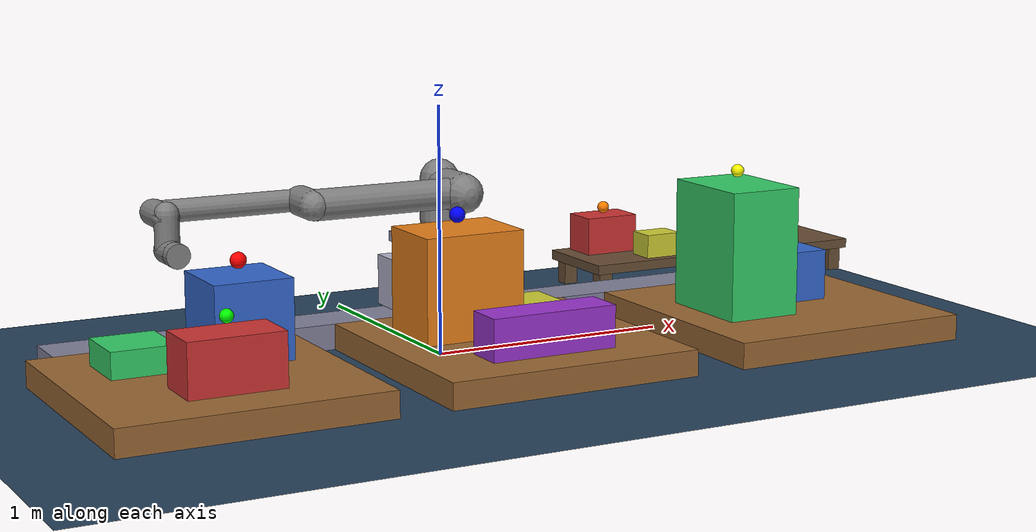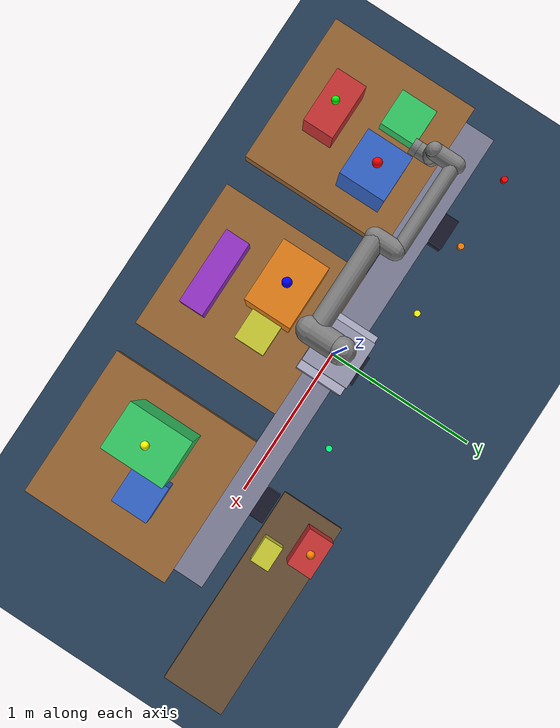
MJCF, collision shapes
<mujoco model="linear_axis_ur10e_warehouse">
    <compiler angle="radian" meshdir="assets" autolimits="true"/>
    <option timestep="0.002" iterations="150" solver="PGS" gravity="0 0 -9.81" integrator="implicitfast"/>
    <statistic center="0 0 0.4" extent="1"/>

    <visual>
        <headlight diffuse="0.6 0.6 0.6" ambient="0.1 0.1 0.1" specular="0 0 0"/>
        <rgba haze="0.15 0.25 0.35 1"/>
        <global azimuth="120" elevation="-20"/>
        <quality shadowsize="2048"/>
        <map stiffness="700" shadowscale="0.5" fogstart="10" fogend="15"/>
    </visual>

    <default>
        <default class="ur10e">
            <material specular="0.5" shininess="0.25"/>
            <joint axis="0 1 0" range="-6.28319 6.28319" armature="0.1"/>
            <position ctrlrange="-6.2831 6.2831"/>
            <general biastype="affine" ctrlrange="-6.2831 6.2831" gainprm="5000" biasprm="0 -5000 -500"/>
            <default class="size4">
                <joint damping="10"/>
                <general forcerange="-330 330"/>
            </default>
            <default class="size3">
                <joint damping="5"/>
                <general forcerange="-150 150"/>
                <default class="size3_limited">
                    <joint range="-3.1415 3.1415"/>
                    <general ctrlrange="-3.1415 3.1415"/>
                </default>
            </default>
            <default class="size2">
                <joint damping="2"/>
                <general forcerange="-56 56"/>
            </default>
            <default class="visual">
                <geom type="mesh" contype="0" conaffinity="0" group="2"/>
            </default>
            <default class="collision">
                <geom type="capsule" group="3"/>
                <default class="eef_collision">
                    <geom type="cylinder"/>
                </default>
            </default>
            <site size="0.001" rgba="0.5 0.5 0.5 0.3" group="4"/>
        </default>

        <!-- Clases para elementos del almacén -->
        <default class="pallet">
            <geom type="box" rgba="0.6 0.4 0.2 1" friction="0.7"/>
        </default>
        <default class="box">
            <geom type="box" friction="0.5"/>
        </default>
        <default class="table">
            <geom type="box" rgba="0.4 0.3 0.2 1" friction="0.8"/>
        </default>
        <default class="marker">
            <geom type="sphere" rgba="1 0 0 1" contype="0" conaffinity="0"/>
        </default>
    </default>

    <asset>
        <!-- Texturas y materiales del entorno -->
        <texture name="grid" type="2d" builtin="checker" width="512" height="512" rgb1="0.1 0.2 0.3" rgb2="0.2 0.3 0.4"/>
        <material name="grid" texture="grid" texrepeat="30 10" texuniform="true" reflectance="0.2"/>

        <texture name="metal" type="2d" builtin="flat" width="32" height="32" rgb1="0.7 0.7 0.8"/>
        <material name="metal" texture="metal" reflectance="0.3" rgba="0.7 0.7 0.8 1"/>

        <texture name="rail" type="2d" builtin="flat" width="32" height="32" rgb1="0.5 0.5 0.6"/>
        <material name="rail" texture="rail" reflectance="0.4" rgba="0.5 0.5 0.6 1"/>

        <texture name="support" type="2d" builtin="flat" width="32" height="32" rgb1="0.3 0.3 0.4"/>
        <material name="support" texture="support" reflectance="0.2" rgba="0.3 0.3 0.4 1"/>

        <!-- Materiales del UR10e -->
        <material class="ur10e" name="black" rgba="0.033 0.033 0.033 1"/>
        <material class="ur10e" name="jointgray" rgba="0.278 0.278 0.278 1"/>
        <material class="ur10e" name="linkgray" rgba="0.82 0.82 0.82 1"/>
        <material class="ur10e" name="urblue" rgba="0.49 0.678 0.8 1"/>

        <!-- Materiales del almacén -->
        <material name="box_blue" rgba="0.2 0.4 0.8 1"/>
        <material name="box_green" rgba="0.2 0.8 0.4 1"/>
        <material name="box_red" rgba="0.8 0.2 0.2 1"/>
        <material name="box_yellow" rgba="0.8 0.8 0.2 1"/>
        <material name="box_orange" rgba="0.9 0.5 0.1 1"/>
        <material name="box_purple" rgba="0.6 0.2 0.8 1"/>

        <!-- Meshes del UR10e -->
        <mesh file="base_0.obj"/>
        <mesh file="base_1.obj"/>
        <mesh file="shoulder_0.obj"/>
        <mesh file="shoulder_1.obj"/>
        <mesh file="shoulder_2.obj"/>
        <mesh file="upperarm_0.obj"/>
        <mesh file="upperarm_1.obj"/>
        <mesh file="upperarm_2.obj"/>
        <mesh file="upperarm_3.obj"/>
        <mesh file="forearm_0.obj"/>
        <mesh file="forearm_1.obj"/>
        <mesh file="forearm_2.obj"/>
        <mesh file="forearm_3.obj"/>
        <mesh file="wrist1_0.obj"/>
        <mesh file="wrist1_1.obj"/>
        <mesh file="wrist1_2.obj"/>
        <mesh file="wrist2_0.obj"/>
        <mesh file="wrist2_1.obj"/>
        <mesh file="wrist2_2.obj"/>
        <mesh file="wrist3.obj"/>
    </asset>

    <worldbody>
        <!-- Iluminación -->
        <light pos="0 0 1.5" dir="0 0 -1" directional="true"/>
        <light name="spotlight" mode="targetbodycom" target="wrist_2_link" pos="0 -1 2"/>

        <!-- Suelo más grande -->
        <geom name="floor" pos="0 0 0" size="15 5 0.1" type="plane" material="grid"/>

        <!-- Carril base fijo - Adaptado a 3 metros -->
        <body name="rail_base" pos="0 0 0.1">
            <geom name="rail_structure" pos="0 0 0.05" size="1.6 0.1 0.05" type="box" material="rail" rgba="0.5 0.5 0.6 1"/>

            <!-- Soportes del carril cada metro (para 3 metros totales) -->
            <geom name="support_1" pos="-1 0 -0.05" size="0.1 0.2 0.05" type="box" material="support"/>
            <geom name="support_2" pos="0 0 -0.05" size="0.1 0.2 0.05" type="box" material="support"/>
            <geom name="support_3" pos="1 0 -0.05" size="0.1 0.2 0.05" type="box" material="support"/>

            <!-- Slider (séptimo eje) - Adaptado a 3 metros -->
            <body name="linear_slider" pos="0 0 0.2">
                <inertial mass="50" pos="0 0 0" diaginertia="1 1 1"/>
                <joint name="linear_joint" type="slide" axis="1 0 0" range="-1.5 1.5" limited="true" damping="50" frictionloss="10"/>

                <!-- Carro del slider -->
                <geom name="slider_cart" pos="0 0 0" size="0.2 0.15 0.1" type="box" material="metal" rgba="0.7 0.7 0.8 1"/>

                <!-- Plataforma de montaje para robots -->
                <body name="mount_platform" pos="0 0 0.15">
                    <geom name="mount_base" pos="0 0 0.02" size="0.15 0.15 0.02" type="box" material="metal" rgba="0.6 0.6 0.7 1"/>

                    <!-- Puntos de montaje (agujeros simulados) -->
                    <geom name="mount_hole_1" pos="0.08 0.08 0.025" size="0.01 0.01 0.025" type="cylinder" rgba="0.2 0.2 0.2 1"/>
                    <geom name="mount_hole_2" pos="-0.08 0.08 0.025" size="0.01 0.01 0.025" type="cylinder" rgba="0.2 0.2 0.2 1"/>
                    <geom name="mount_hole_3" pos="0.08 -0.08 0.025" size="0.01 0.01 0.025" type="cylinder" rgba="0.2 0.2 0.2 1"/>
                    <geom name="mount_hole_4" pos="-0.08 -0.08 0.025" size="0.01 0.01 0.025" type="cylinder" rgba="0.2 0.2 0.2 1"/>

                    <!-- UR10e montado en la plataforma -->
                    <body name="base" pos="0 0 0.05" quat="0 0 0 -1" childclass="ur10e">
                        <inertial mass="4.0" pos="0 0 0" diaginertia="0.0061063308908 0.0061063308908 0.01125"/>
                        <geom mesh="base_0" material="black" class="visual"/>
                        <geom mesh="base_1" material="jointgray" class="visual"/>
                        <body name="shoulder_link" pos="0 0 0.181">
                            <inertial pos="0 0 0" mass="7.778" diaginertia="0.0314743 0.0314743 0.0218756"/>
                            <joint name="shoulder_pan_joint" class="size4" axis="0 0 1"/>
                            <geom mesh="shoulder_0" material="urblue" class="visual"/>
                            <geom mesh="shoulder_1" material="black" class="visual"/>
                            <geom mesh="shoulder_2" material="jointgray" class="visual"/>
                            <geom class="collision" size="0.078 0.08" pos="0 0 -0.05"/>
                            <body name="upper_arm_link" pos="0 0.176 0" quat="1 0 1 0">
                                <inertial pos="0 0 0.3065" mass="12.93" diaginertia="0.423074 0.423074 0.0363656"/>
                                <joint name="shoulder_lift_joint" class="size4"/>
                                <geom mesh="upperarm_0" material="black" class="visual"/>
                                <geom mesh="upperarm_1" material="jointgray" class="visual"/>
                                <geom mesh="upperarm_2" material="urblue" class="visual"/>
                                <geom mesh="upperarm_3" material="linkgray" class="visual"/>
                                <geom class="collision" pos="0 -0.05 0" quat="1 1 0 0" size="0.078 0.08"/>
                                <geom class="collision" size="0.06 0.3" pos="0 0 0.3"/>
                                <body name="forearm_link" pos="0 -0.137 0.613">
                                    <inertial pos="0 0 0.2855" mass="3.87" diaginertia="0.11059 0.11059 0.0108844"/>
                                    <joint name="elbow_joint" class="size3_limited"/>
                                    <geom mesh="forearm_0" material="urblue" class="visual"/>
                                    <geom mesh="forearm_1" material="black" class="visual"/>
                                    <geom mesh="forearm_2" material="jointgray" class="visual"/>
                                    <geom mesh="forearm_3" material="linkgray" class="visual"/>
                                    <geom class="collision" pos="0 0.08 0" quat="1 1 0 0" size="0.058 0.065"/>
                                    <geom class="collision" size="0.043 0.28" pos="0 0 0.29"/>
                                    <body name="wrist_1_link" pos="0 0 0.571" quat="1 0 1 0">
                                        <inertial pos="0 0.135 0" quat="0.5 0.5 -0.5 0.5" mass="1.96" diaginertia="0.0055125 0.00510825 0.00510825"/>
                                        <joint name="wrist_1_joint" class="size2"/>
                                        <geom mesh="wrist1_0" material="black" class="visual"/>
                                        <geom mesh="wrist1_1" material="urblue" class="visual"/>
                                        <geom mesh="wrist1_2" material="jointgray" class="visual"/>
                                        <geom class="collision" pos="0 0.06 0" quat="1 1 0 0" size="0.05 0.07"/>
                                        <body name="wrist_2_link" pos="0 0.135 0">
                                            <inertial pos="0 0 0.12" quat="0.5 0.5 -0.5 0.5" mass="1.96" diaginertia="0.0055125 0.00510825 0.00510825"/>
                                            <joint name="wrist_2_joint" axis="0 0 1" class="size2"/>
                                            <geom mesh="wrist2_0" material="black" class="visual"/>
                                            <geom mesh="wrist2_1" material="urblue" class="visual"/>
                                            <geom mesh="wrist2_2" material="jointgray" class="visual"/>
                                            <geom class="collision" size="0.046 0.065" pos="0 0 0.05"/>
                                            <geom class="collision" pos="0 0.028 0.12" quat="1 1 0 0" size="0.046 0.043"/>
                                            <body name="wrist_3_link" pos="0 0 0.12">
                                                <inertial pos="0 0.092 0" quat="0 1 -1 0" mass="0.202" diaginertia="0.000204525 0.000144346 0.000144346"/>
                                                <joint name="wrist_3_joint" class="size2"/>
                                                <geom material="linkgray" mesh="wrist3" class="visual"/>
                                                <geom class="eef_collision" pos="0 0.097 0" quat="1 1 0 0" size="0.046 0.02"/>
                                                <site name="attachment_site" pos="0 0.1 0" quat="-1 1 0 0"/>
                                            </body>
                                        </body>
                                    </body>
                                </body>
                            </body>
                        </body>
                    </body>
                </body>
            </body>
        </body>

        <!-- ESTIVA 1 - Posición -1.2m en X, separada 10cm del eje -->
        <body name="pallet_1" pos="-1.2 -0.6 0.1">
            <!-- Base de la estiva (1m x 1m x 0.1m) -->
            <geom name="pallet_1_base" pos="0 0 0.05" size="0.5 0.5 0.05" class="pallet"/>

            <!-- Listones de la estiva -->
            <geom name="pallet_1_slat_1" pos="-0.3 0 0.02" size="0.15 0.45 0.02" class="pallet"/>
            <geom name="pallet_1_slat_2" pos="0 0 0.02" size="0.15 0.45 0.02" class="pallet"/>
            <geom name="pallet_1_slat_3" pos="0.3 0 0.02" size="0.15 0.45 0.02" class="pallet"/>

            <!-- Cajas en estiva 1 -->
            <body name="box_1_1" pos="0.2 0.2 0.25">
                <geom name="box_1_1_geom" size="0.15 0.15 0.15" material="box_blue" class="box"/>
                <!-- Marcador en esta caja -->
                <body name="marker_box_1_1" pos="0 0 0.2">
                    <geom name="marker_1_1" size="0.03" class="marker" rgba="1 0 0 1"/>
                </body>
            </body>

            <body name="box_1_2" pos="-0.2 0.2 0.15">
                <geom name="box_1_2_geom" size="0.12 0.12 0.05" material="box_green" class="box"/>
            </body>

            <body name="box_1_3" pos="0 -0.2 0.2">
                <geom name="box_1_3_geom" size="0.18 0.1 0.1" material="box_red" class="box"/>
                <!-- Marcador en esta caja -->
                <body name="marker_box_1_3" pos="0 0 0.15">
                    <geom name="marker_1_3" size="0.025" class="marker" rgba="0 1 0 1"/>
                </body>
            </body>
        </body>

        <!-- ESTIVA 2 - Posición 0.0m en X, separada 10cm del eje -->
        <body name="pallet_2" pos="0.0 -0.6 0.1">
            <!-- Base de la estiva -->
            <geom name="pallet_2_base" pos="0 0 0.05" size="0.5 0.5 0.05" class="pallet"/>

            <!-- Listones de la estiva -->
            <geom name="pallet_2_slat_1" pos="-0.3 0 0.02" size="0.15 0.45 0.02" class="pallet"/>
            <geom name="pallet_2_slat_2" pos="0 0 0.02" size="0.15 0.45 0.02" class="pallet"/>
            <geom name="pallet_2_slat_3" pos="0.3 0 0.02" size="0.15 0.45 0.02" class="pallet"/>

            <!-- Cajas en estiva 2 -->
            <body name="box_2_1" pos="0.15 0.15 0.15">
                <geom name="box_2_1_geom" size="0.1 0.1 0.05" material="box_yellow" class="box"/>
            </body>

            <body name="box_2_2" pos="-0.15 0.15 0.3">
                <geom name="box_2_2_geom" size="0.2 0.15 0.2" material="box_orange" class="box"/>
                <!-- Marcador en esta caja -->
                <body name="marker_box_2_2" pos="0 0 0.25">
                    <geom name="marker_2_2" size="0.03" class="marker" rgba="0 0 1 1"/>
                </body>
            </body>

            <body name="box_2_3" pos="0 -0.25 0.18">
                <geom name="box_2_3_geom" size="0.25 0.08 0.08" material="box_purple" class="box"/>
            </body>
        </body>

        <!-- ESTIVA 3 - Posición 1.2m en X, separada 10cm del eje -->
        <body name="pallet_3" pos="1.2 -0.6 0.1">
            <!-- Base de la estiva -->
            <geom name="pallet_3_base" pos="0 0 0.05" size="0.5 0.5 0.05" class="pallet"/>

            <!-- Listones de la estiva -->
            <geom name="pallet_3_slat_1" pos="-0.3 0 0.02" size="0.15 0.45 0.02" class="pallet"/>
            <geom name="pallet_3_slat_2" pos="0 0 0.02" size="0.15 0.45 0.02" class="pallet"/>
            <geom name="pallet_3_slat_3" pos="0.3 0 0.02" size="0.15 0.45 0.02" class="pallet"/>

            <!-- Cajas en estiva 3 -->
            <body name="box_3_1" pos="0.1 0.1 0.2">
                <geom name="box_3_1_geom" size="0.12 0.12 0.1" material="box_blue" class="box"/>
            </body>

            <body name="box_3_2" pos="-0.2 0 0.35">
                <geom name="box_3_2_geom" size="0.15 0.2 0.25" material="box_green" class="box"/>
                <!-- Marcador en esta caja -->
                <body name="marker_box_3_2" pos="0 0 0.3">
                    <geom name="marker_3_2" size="0.025" class="marker" rgba="1 1 0 1"/>
                </body>
            </body>
        </body>

        <!-- MESA MÁS LARGA, ALEJADA 10CM DEL EJE, PATAS DE 10CM -->
        <body name="work_table" pos="1.5 0.4 0.1">
            <!-- Patas de la mesa (10cm de altura) -->
            <geom name="table_leg_1" pos="0.6 0.15 0.05" size="0.03 0.03 0.05" class="table"/>
            <geom name="table_leg_2" pos="-0.6 0.15 0.05" size="0.03 0.03 0.05" class="table"/>
            <geom name="table_leg_3" pos="0.6 -0.15 0.05" size="0.03 0.03 0.05" class="table"/>
            <geom name="table_leg_4" pos="-0.6 -0.15 0.05" size="0.03 0.03 0.05" class="table"/>

            <!-- Superficie de la mesa (más larga - 130cm x 40cm) -->
            <geom name="table_top" pos="0 0 0.12" size="0.65 0.2 0.02" class="table"/>

            <!-- Múltiples cajas sobre la mesa más larga -->
            <body name="table_box_1" pos="-0.45 0.1 0.22">
                <geom name="table_box_1_geom" size="0.12 0.08 0.08" material="box_red" class="box"/>
                <!-- Marcador sobre esta caja -->
                <body name="marker_table_box_1" pos="0 0 0.11">
                    <geom name="marker_table_1" size="0.025" class="marker" rgba="1 0.5 0 1"/>
                </body>
            </body>

            <body name="table_box_4" pos="-0.3 -0.1 0.19">
                <geom name="table_box_4_geom" size="0.08 0.06 0.05" material="box_yellow" class="box"/>
            </body>

        </body>

        <!-- Marcadores de posición adaptados a 3 metros (cada 0.5m) -->
        <body name="markers">
            <geom name="marker_m1_5" pos="-1.5 0.3 0.01" size="0.02 0.02 0.01" type="cylinder" rgba="1 0 0 1"/>
            <geom name="marker_m1_0" pos="-1.0 0.3 0.01" size="0.02 0.02 0.01" type="cylinder" rgba="1 0.5 0 1"/>
            <geom name="marker_m0_5" pos="-0.5 0.3 0.01" size="0.02 0.02 0.01" type="cylinder" rgba="1 1 0 1"/>
            <geom name="marker_0" pos="0 0.3 0.01" size="0.02 0.02 0.01" type="cylinder" rgba="0 1 0 1"/>
            <geom name="marker_p0_5" pos="0.5 0.3 0.01" size="0.02 0.02 0.01" type="cylinder" rgba="0 1 0.5 1"/>
            <geom name="marker_p1_0" pos="1.0 0.3 0.01" size="0.02 0.02 0.01" type="cylinder" rgba="0 0.5 1 1"/>
            <geom name="marker_p1_5" pos="1.5 0.3 0.01" size="0.02 0.02 0.01" type="cylinder" rgba="0 0 1 1"/>
        </body>
    </worldbody>

    <actuator>
        <!-- Actuador del séptimo eje - Position control optimizado -->
        <position name="linear_actuator" joint="linear_joint"
                  kp="50000"
                  kv="5000"
                  ctrlrange="-1.5 1.5"
                  forcerange="-1500 1500"/>

        <!-- Actuadores del UR10e -->
        <general class="size4" name="shoulder_pan" joint="shoulder_pan_joint"/>
        <general class="size4" name="shoulder_lift" joint="shoulder_lift_joint"/>
        <general class="size3_limited" name="elbow" joint="elbow_joint"/>
        <general class="size2" name="wrist_1" joint="wrist_1_joint"/>
        <general class="size2" name="wrist_2" joint="wrist_2_joint"/>
        <general class="size2" name="wrist_3" joint="wrist_3_joint"/>
    </actuator>

    <sensor>
        <!-- Sensores del séptimo eje -->
        <jointpos name="linear_position" joint="linear_joint"/>
        <jointvel name="linear_velocity" joint="linear_joint"/>

        <!-- Sensores del UR10e -->
        <jointpos name="shoulder_pan_pos" joint="shoulder_pan_joint"/>
        <jointpos name="shoulder_lift_pos" joint="shoulder_lift_joint"/>
        <jointpos name="elbow_pos" joint="elbow_joint"/>
        <jointpos name="wrist_1_pos" joint="wrist_1_joint"/>
        <jointpos name="wrist_2_pos" joint="wrist_2_joint"/>
        <jointpos name="wrist_3_pos" joint="wrist_3_joint"/>
    </sensor>

    <keyframe>
        <key name="home" qpos="0 -1.5708 -1.5708 1.5708 -1.5708 -1.5708 0" ctrl="0 -1.5708 -1.5708 1.5708 -1.5708 -1.5708 0"/>
    </keyframe>
</mujoco>
